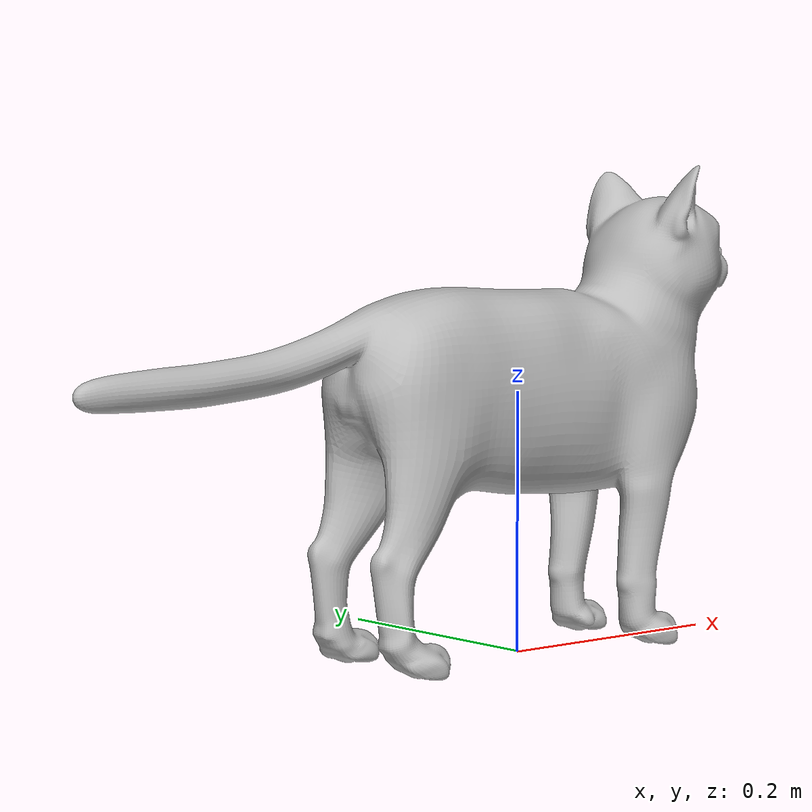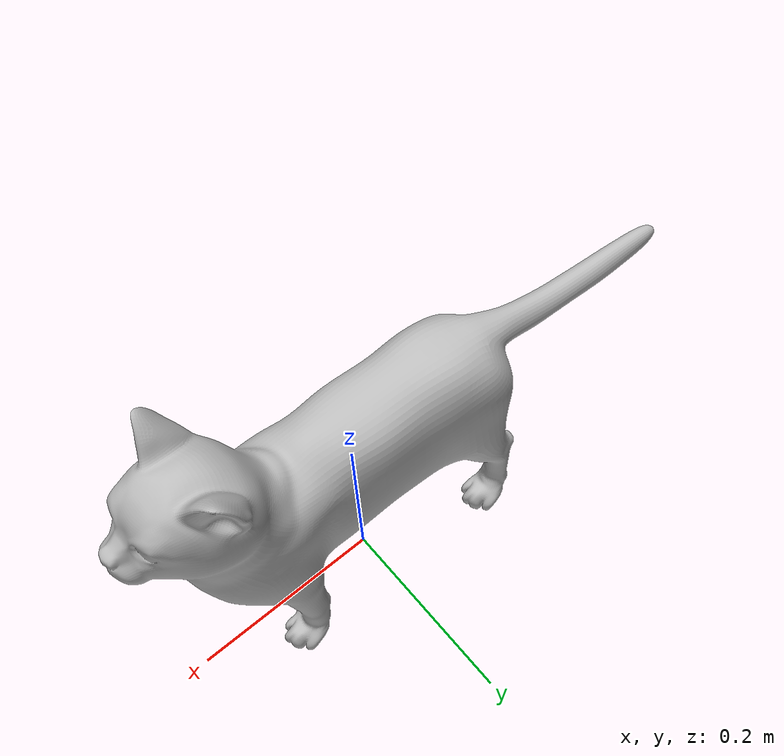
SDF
<?xml version="1.0" ?>
<sdf version="1.5">
  <model name="cat_orange">
    <link name="body">
      <pose>0 0 0 0 0 0</pose>
      <collision name="collision">
        <geometry>
            <box>
              <size>0.32 0.1 0.14</size>
            </box>
        </geometry>
        <pose>0 0 0.2 0 0 0</pose>
      </collision>
      <visual name="visual">
        <geometry>
          <mesh>
            <uri>model://cat_orange/meshes/cat_orange.obj</uri>
            <scale>0.01 0.01 0.01</scale>
          </mesh>
        </geometry>
        <pose>0 0 0 0 0 1.570796327</pose>
      </visual>
      <inertial>
        <inertia>
          <ixx>0.009867</ixx>
          <ixy>0</ixy>
          <ixz>0</ixz>
          <iyy>0.04067</iyy>
          <iyz>0</iyz>
          <izz>0.03747</izz>
        </inertia>
        <mass>4</mass>
        <pose>0 0 0.2 0 0 0</pose>
      </inertial>
      <sensor name="body_contact_sensor" type="contact">
        <always_on>true</always_on>
        <contact>
          <collision>collision</collision>
          <topic>/cats/contacts</topic>
        </contact>
      </sensor>
    </link>
    <joint name="head_joint" type="fixed">
      <parent>body</parent>
      <child>head</child>
    </joint>
    <link name="head">
      <collision name="collision">
        <geometry>
          <sphere>
            <radius>0.055</radius>
          </sphere>
        </geometry>
      </collision>
      <inertial>
        <inertia>
          <ixx>0.0003417</ixx>
          <ixy>0</ixy>
          <ixz>0</ixz>
          <iyy>0.0003417</iyy>
          <iyz>0</iyz>
          <izz>0.0004167</izz>
        </inertia>
        <mass>0.25</mass>
      </inertial>
      <pose>0.155 0 0.3 0 0 0</pose>
      <sensor name="head_contact_sensor" type="contact">
        <always_on>true</always_on>
        <contact>
          <collision>collision</collision>
          <topic>/cats/contacts</topic>
        </contact>
      </sensor>
    </link>
    <joint name="front_legs_joint" type="fixed">
      <parent>body</parent>
      <child>front_legs</child>
    </joint>
    <link name="front_legs">
      <collision name="collision">
        <geometry>
            <box>
              <size>0.03 0.1 0.14</size>
            </box>
        </geometry>
      </collision>
      <inertial>
        <inertia>
          <ixx>0.0006167</ixx>
          <ixy>0</ixy>
          <ixz>0</ixz>
          <iyy>0.0004417</iyy>
          <iyz>0</iyz>
          <izz>0.00024167</izz>
        </inertia>
        <mass>0.25</mass>
      </inertial>
      <pose>0.1 0 0.07 0 0 0</pose>
    </link>
    <joint name="rear_legs_joint" type="fixed">
      <parent>body</parent>
      <child>rear_legs</child>
    </joint>
    <link name="rear_legs">
      <collision name="collision">
        <geometry>
            <box>
              <size>0.04 0.1 0.14</size>
            </box>
        </geometry>
      </collision>
      <inertial>
        <inertia>
          <ixx>0.0006167</ixx>
          <ixy>0</ixy>
          <ixz>0</ixz>
          <iyy>0.0004417</iyy>
          <iyz>0</iyz>
          <izz>0.00024167</izz>
        </inertia>
        <mass>0.25</mass>
      </inertial>
      <pose>-0.14 0 0.07 0 0 0</pose>
    </link>
    <!-- The pose of every cat on one topic, named after each, for the cats controller -->
    <plugin filename="gz-sim-odometry-publisher-system" name="gz::sim::systems::OdometryPublisher">
      <dimensions>3</dimensions>
      <odom_publish_frequency>10</odom_publish_frequency>
      <odom_topic>/cats/odometry</odom_topic>
    </plugin>
  </model>
</sdf>
